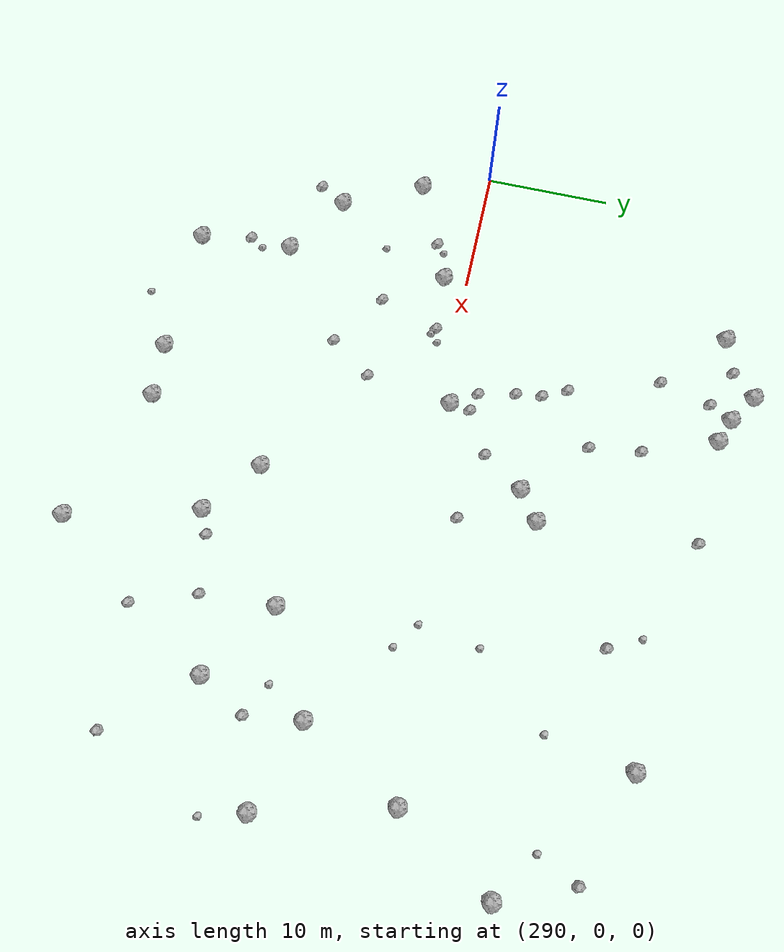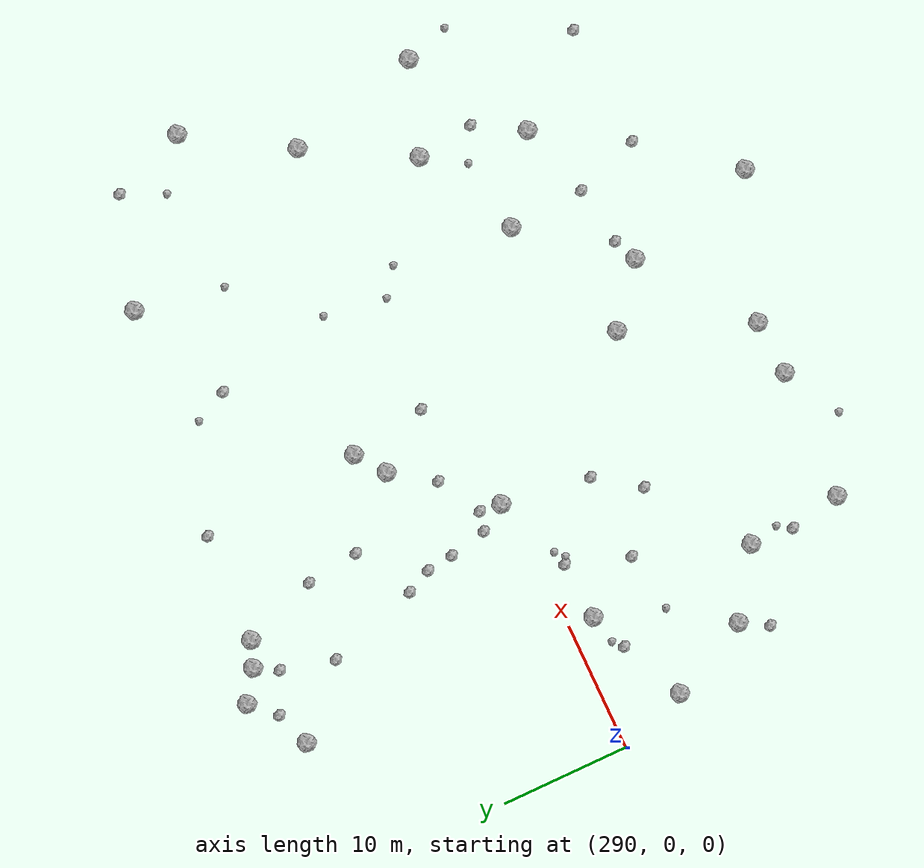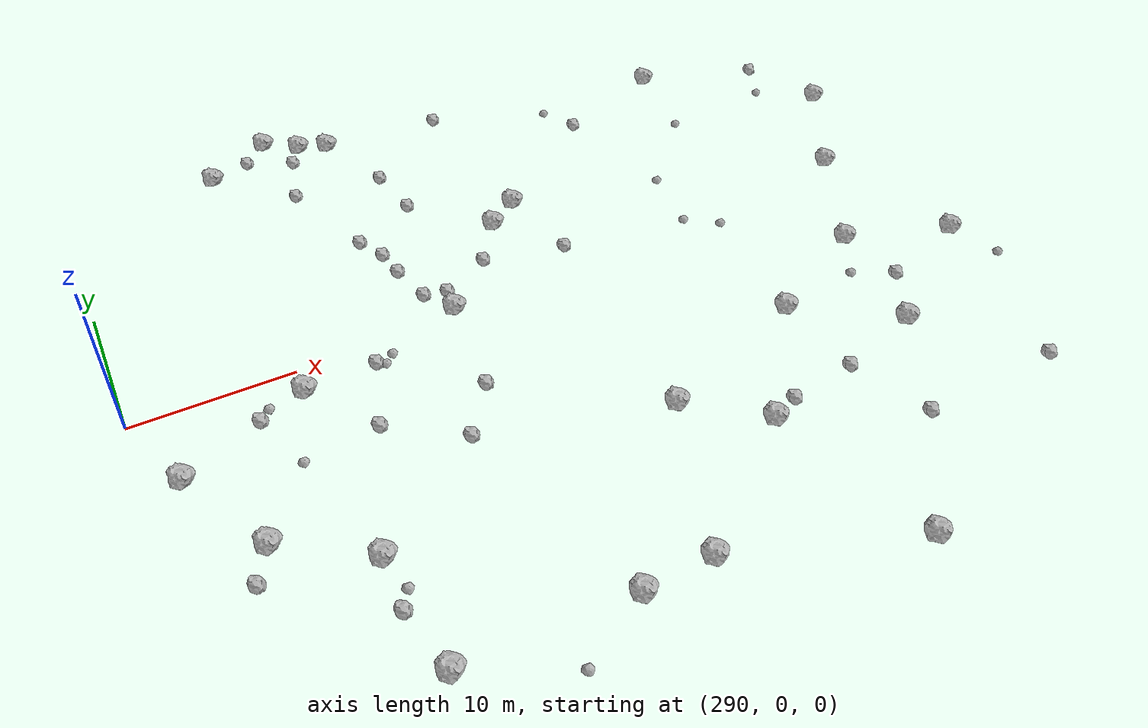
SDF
<sdf version="1.6">
 <world name="default">
  <include><uri>model://sun</uri></include>
  <model name="rock1_8_3">
   <include><uri>model://rock1</uri><pose>314.8876863003047 -22.567679423011132 0.5 0 0 0</pose></include>
  </model>
  <model name="rock1_8_4">
   <include><uri>model://rock1</uri><pose>346.30122757671 11.258201171568686 0.5 0 0 0</pose></include>
  </model>
  <model name="rock1_8_5">
   <include><uri>model://rock1</uri><pose>325.8239226189712 -26.61146186264665 0.5 0 0 0</pose></include>
  </model>
  <model name="rock1_8_6">
   <include><uri>model://rock1</uri><pose>344.13634767956785 -7.048460563267753 0.5 0 0 0</pose></include>
  </model>
  <model name="rock1_8_7">
   <include><uri>model://rock1</uri><pose>309.1878902833665 22.115230350675567 0.5 0 0 0</pose></include>
  </model>
  <model name="rock1_8_8">
   <include><uri>model://rock1</uri><pose>299.9499387212027 -1.9306335355791262 0.5 0 0 0</pose></include>
  </model>
  <model name="rock1_8_9">
   <include><uri>model://rock1</uri><pose>310.58939494899454 -22.786778940383083 0.5 0 0 0</pose></include>
  </model>
  <model name="rock1_8_10">
   <include><uri>model://rock1</uri><pose>329.2487660454083 -8.71729988726663 0.5 0 0 0</pose></include>
  </model>
  <model name="rock1_8_11">
   <include><uri>model://rock1</uri><pose>304.958088553941 24.38236076510431 0.5 0 0 0</pose></include>
  </model>
  <model name="rock1_8_12">
   <include><uri>model://rock1</uri><pose>295.00114725319435 -11.639667967552455 0.5 0 0 0</pose></include>
  </model>
  <model name="rock1_8_13">
   <include><uri>model://rock1</uri><pose>318.6089405471766 9.274562121109504 0.5 0 0 0</pose></include>
  </model>
  <model name="rock1_8_14">
   <include><uri>model://rock1</uri><pose>337.01790575972586 -4.652802732906785 0.5 0 0 0</pose></include>
  </model>
  <model name="rock1_8_15">
   <include><uri>model://rock1</uri><pose>323.14387924882885 -16.193619755354252 0.5 0 0 0</pose></include>
  </model>
  <model name="rock1_8_16">
   <include><uri>model://rock1</uri><pose>300.4474209029893 21.53291272247332 0.5 0 0 0</pose></include>
  </model>
  <model name="rock1_8_17">
   <include><uri>model://rock1</uri><pose>300.51141321108076 -22.407700825319214 0.5 0 0 0</pose></include>
  </model>
  <model name="rock1_8_18">
   <include><uri>model://rock1</uri><pose>299.9491426009875 -15.008996780988348 0.5 0 0 0</pose></include>
  </model>
  <model name="rock1_8_19">
   <include><uri>model://rock1</uri><pose>335.43286164462205 -12.930529783756946 0.5 0 0 0</pose></include>
  </model>
  <model name="rock1_8_20">
   <include><uri>model://rock1</uri><pose>341.4993716785612 3.4383922129060025 0.5 0 0 0</pose></include>
  </model>
  <model name="rock1_8_21">
   <include><uri>model://rock1</uri><pose>307.21644339036925 22.850853190731648 0.5 0 0 0</pose></include>
  </model>
  <model name="rock1_8_22">
   <include><uri>model://rock1</uri><pose>316.3586772636968 7.605918479928157 0.5 0 0 0</pose></include>
  </model>
  <model name="rock1_8_23">
   <include><uri>model://rock1</uri><pose>310.5675102205399 0.7750493547843789 0.5 0 0 0</pose></include>
  </model>
  <model name="rock1_8_24">
   <include><uri>model://rock1</uri><pose>335.4648642952588 19.759283875787688 0.5 0 0 0</pose></include>
  </model>
  <model name="rock1_8_25">
   <include><uri>model://rock1</uri><pose>292.0491028551914 -5.405765305335429 0.5 0 0 0</pose></include>
  </model>
  <model name="rock1_8_26">
   <include><uri>model://rock1</uri><pose>318.76822715852154 -12.64127324804058 0.5 0 0 0</pose></include>
  </model>
  <model name="rock2_8_0">
   <include><uri>model://rock2</uri><pose>307.42017776587255 9.809018729578348 0.3 0 0 0</pose></include>
  </model>
  <model name="rock2_8_1">
   <include><uri>model://rock2</uri><pose>329.55655909898655 -14.696505795732303 0.3 0 0 0</pose></include>
  </model>
  <model name="rock2_8_2">
   <include><uri>model://rock2</uri><pose>307.1758430354548 -9.529012324422233 0.3 0 0 0</pose></include>
  </model>
  <model name="rock2_8_3">
   <include><uri>model://rock2</uri><pose>331.34289989570533 -19.768944021003485 0.3 0 0 0</pose></include>
  </model>
  <model name="rock2_8_4">
   <include><uri>model://rock2</uri><pose>319.5662013831773 3.2617824624335086 0.3 0 0 0</pose></include>
  </model>
  <model name="rock2_8_5">
   <include><uri>model://rock2</uri><pose>304.42696069053056 -1.6313002102006458 0.3 0 0 0</pose></include>
  </model>
  <model name="rock2_8_6">
   <include><uri>model://rock2</uri><pose>337.59975917799846 -9.18062839604925 0.3 0 0 0</pose></include>
  </model>
  <model name="rock2_8_7">
   <include><uri>model://rock2</uri><pose>311.7782600416025 12.267308791762616 0.3 0 0 0</pose></include>
  </model>
  <model name="rock2_8_8">
   <include><uri>model://rock2</uri><pose>310.7351585753291 2.473553394957044 0.3 0 0 0</pose></include>
  </model>
  <model name="rock2_8_9">
   <include><uri>model://rock2</uri><pose>306.2026399678142 21.113462735789874 0.3 0 0 0</pose></include>
  </model>
  <model name="rock2_8_10">
   <include><uri>model://rock2</uri><pose>305.15435706650845 16.957992422868138 0.3 0 0 0</pose></include>
  </model>
  <model name="rock2_8_11">
   <include><uri>model://rock2</uri><pose>309.5620366807337 -6.170376519138355 0.3 0 0 0</pose></include>
  </model>
  <model name="rock2_8_12">
   <include><uri>model://rock2</uri><pose>327.0467033710054 16.268257488686636 0.3 0 0 0</pose></include>
  </model>
  <model name="rock2_8_13">
   <include><uri>model://rock2</uri><pose>303.15516946388806 22.544223311091315 0.3 0 0 0</pose></include>
  </model>
  <model name="rock2_8_14">
   <include><uri>model://rock2</uri><pose>314.09272975588453 4.360521896132923 0.3 0 0 0</pose></include>
  </model>
  <model name="rock2_8_15">
   <include><uri>model://rock2</uri><pose>311.2371969115124 16.383522103535327 0.3 0 0 0</pose></include>
  </model>
  <model name="rock2_8_16">
   <include><uri>model://rock2</uri><pose>324.97911091122796 -15.390776275326782 0.3 0 0 0</pose></include>
  </model>
  <model name="rock2_8_17">
   <include><uri>model://rock2</uri><pose>340.9202996582138 -19.31680023349684 0.3 0 0 0</pose></include>
  </model>
  <model name="rock2_8_18">
   <include><uri>model://rock2</uri><pose>343.9815996653153 17.100906268500843 0.3 0 0 0</pose></include>
  </model>
  <model name="rock2_8_19">
   <include><uri>model://rock2</uri><pose>308.31926649740103 7.86976500648592 0.3 0 0 0</pose></include>
  </model>
  <model name="rock2_8_20">
   <include><uri>model://rock2</uri><pose>317.62872237947056 21.834971260238547 0.3 0 0 0</pose></include>
  </model>
  <model name="rock2_8_21">
   <include><uri>model://rock2</uri><pose>302.8540077858455 -6.473107133054519 0.3 0 0 0</pose></include>
  </model>
  <model name="rock2_8_22">
   <include><uri>model://rock2</uri><pose>296.9539098577034 -3.094358247596606 0.3 0 0 0</pose></include>
  </model>
  <model name="rock2_8_23">
   <include><uri>model://rock2</uri><pose>293.77078241253815 -13.735670080476279 0.3 0 0 0</pose></include>
  </model>
  <model name="rock2_8_24">
   <include><uri>model://rock2</uri><pose>309.2376707765573 2.8374756697546957 0.3 0 0 0</pose></include>
  </model>
  <model name="rock2_8_25">
   <include><uri>model://rock2</uri><pose>308.59636614561634 5.786917160345375 0.3 0 0 0</pose></include>
  </model>
  <model name="rock2_8_26">
   <include><uri>model://rock2</uri><pose>299.6851626249299 -18.3814496232575 0.3 0 0 0</pose></include>
  </model>
  <model name="rock3_8_0">
   <include><uri>model://rock3</uri><pose>330.343111708562 0.5615896387370398 0.2 0 0 0</pose></include>
  </model>
  <model name="rock3_8_1">
   <include><uri>model://rock3</uri><pose>297.64539904537014 -2.442254402068677 0.2 0 0 0</pose></include>
  </model>
  <model name="rock3_8_2">
   <include><uri>model://rock3</uri><pose>345.15343090839536 -10.54921771832943 0.2 0 0 0</pose></include>
  </model>
  <model name="rock3_8_3">
   <include><uri>model://rock3</uri><pose>329.05960886485184 6.954468282158253 0.2 0 0 0</pose></include>
  </model>
  <model name="rock3_8_4">
   <include><uri>model://rock3</uri><pose>334.2141346334145 12.814972156214978 0.2 0 0 0</pose></include>
  </model>
  <model name="rock3_8_5">
   <include><uri>model://rock3</uri><pose>304.91839376783975 -1.9730468399123318 0.2 0 0 0</pose></include>
  </model>
  <model name="rock3_8_6">
   <include><uri>model://rock3</uri><pose>342.47418601076447 13.823313192683777 0.2 0 0 0</pose></include>
  </model>
  <model name="rock3_8_7">
   <include><uri>model://rock3</uri><pose>328.28319316200214 2.0590020448684285 0.2 0 0 0</pose></include>
  </model>
  <model name="rock3_8_8">
   <include><uri>model://rock3</uri><pose>335.00213088089026 -7.848487516897013 0.2 0 0 0</pose></include>
  </model>
  <model name="rock3_8_9">
   <include><uri>model://rock3</uri><pose>325.7803789181323 18.799827323118492 0.2 0 0 0</pose></include>
  </model>
  <model name="rock3_8_10">
   <include><uri>model://rock3</uri><pose>305.5709932830709 -1.3428104029641403 0.2 0 0 0</pose></include>
  </model>
  <model name="rock3_8_11">
   <include><uri>model://rock3</uri><pose>306.1397949765887 -25.27580651483158 0.2 0 0 0</pose></include>
  </model>
  <model name="rock3_8_12">
   <include><uri>model://rock3</uri><pose>300.33884159684305 -17.344063334186735 0.2 0 0 0</pose></include>
  </model>
  <model name="rock3_8_13">
   <include><uri>model://rock3</uri><pose>298.21673411690387 -7.194178842578502 0.2 0 0 0</pose></include>
  </model>
 </world>
</sdf>
